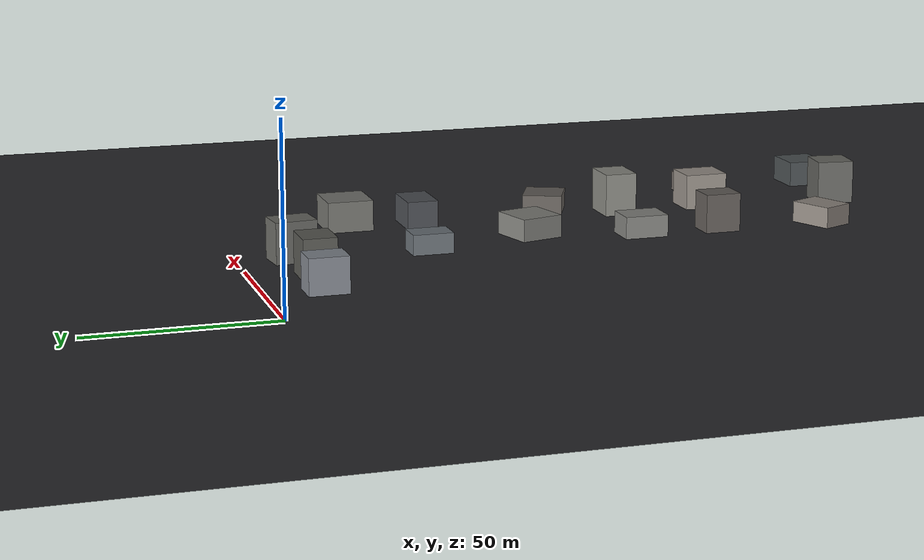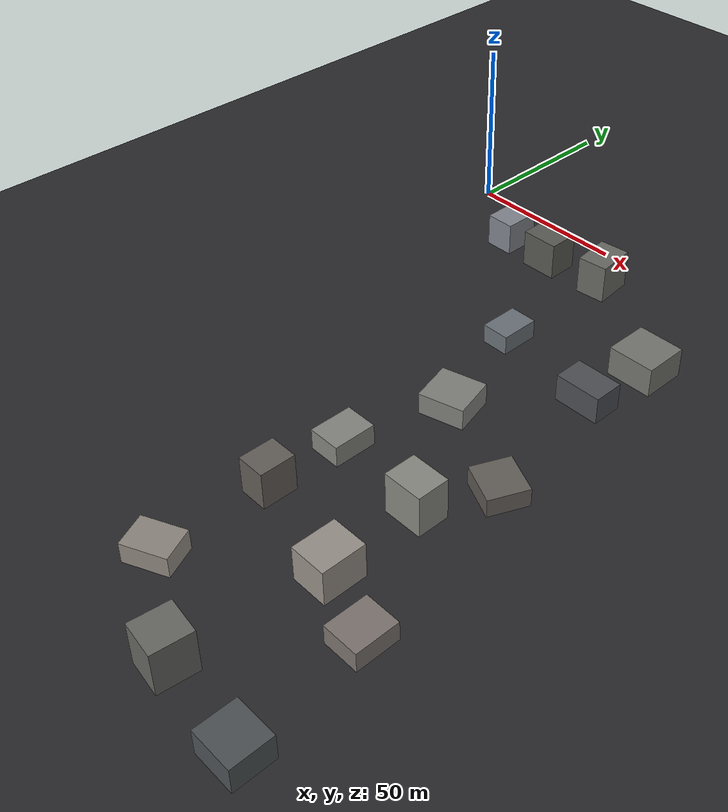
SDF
<sdf version="1.7">
 <world name="urban_course">
  <model name="ground">
   <static>true</static>
   <pose>67.5 -85.5 0 0 0 0</pose>
   <link name="l">
    <collision name="c"><geometry><plane><normal>0 0 1</normal><size>195 231</size></plane></geometry></collision>
    <visual name="v">
     <geometry><plane><normal>0 0 1</normal><size>195 231</size></plane></geometry>
     <material><ambient>0.16 0.16 0.17 1</ambient><diffuse>0.16 0.16 0.17 1</diffuse></material>
    </visual>
   </link>
  </model>
  <model name="bldg_01">
   <static>true</static>
   <pose>60.355 -115.386 3.128 0 0 -1.5708</pose>
   <link name="l">
    <collision name="c"><geometry><box><size>12.449 9.469 6.256</size></box></geometry></collision>
    <visual name="v">
     <geometry><box><size>12.449 9.469 6.256</size></box></geometry>
     <material><ambient>0.52 0.52 0.50 1</ambient><diffuse>0.52 0.52 0.50 1</diffuse></material>
    </visual>
   </link>
  </model>
  <model name="bldg_03">
   <static>true</static>
   <pose>90.294 -118.405 6.142 0 0 -1.5708</pose>
   <link name="l">
    <collision name="c"><geometry><box><size>9.323 11.536 12.285</size></box></geometry></collision>
    <visual name="v">
     <geometry><box><size>9.323 11.536 12.285</size></box></geometry>
     <material><ambient>0.54 0.54 0.51 1</ambient><diffuse>0.54 0.54 0.51 1</diffuse></material>
    </visual>
   </link>
  </model>
  <model name="bldg_04">
   <static>true</static>
   <pose>91.743 -58.435 4.015 0 0 -1.5708</pose>
   <link name="l">
    <collision name="c"><geometry><box><size>8.933 13.743 8.029</size></box></geometry></collision>
    <visual name="v">
     <geometry><box><size>8.933 13.743 8.029</size></box></geometry>
     <material><ambient>0.30 0.31 0.33 1</ambient><diffuse>0.30 0.31 0.33 1</diffuse></material>
    </visual>
   </link>
  </model>
  <model name="bldg_05">
   <static>true</static>
   <pose>99.097 -99.468 2.706 0 0 -1.9887</pose>
   <link name="l">
    <collision name="c"><geometry><box><size>11.464 12.227 5.412</size></box></geometry></collision>
    <visual name="v">
     <geometry><box><size>11.464 12.227 5.412</size></box></geometry>
     <material><ambient>0.39 0.37 0.35 1</ambient><diffuse>0.39 0.37 0.35 1</diffuse></material>
    </visual>
   </link>
  </model>
  <model name="bldg_06">
   <static>true</static>
   <pose>86.417 -186.209 6.253 0 0 -0.1177</pose>
   <link name="l">
    <collision name="c"><geometry><box><size>10.281 10.720 12.507</size></box></geometry></collision>
    <visual name="v">
     <geometry><box><size>10.281 10.720 12.507</size></box></geometry>
     <material><ambient>0.41 0.41 0.39 1</ambient><diffuse>0.41 0.41 0.39 1</diffuse></material>
    </visual>
   </link>
  </model>
  <model name="bldg_07">
   <static>true</static>
   <pose>60.331 -14.967 5.781 0 0 -1.4713</pose>
   <link name="l">
    <collision name="c"><geometry><box><size>11.655 9.027 11.562</size></box></geometry></collision>
    <visual name="v">
     <geometry><box><size>11.655 9.027 11.562</size></box></geometry>
     <material><ambient>0.41 0.41 0.39 1</ambient><diffuse>0.41 0.41 0.39 1</diffuse></material>
    </visual>
   </link>
  </model>
  <model name="bldg_09">
   <static>true</static>
   <pose>91.233 -145.859 5.126 0 0 -1.5708</pose>
   <link name="l">
    <collision name="c"><geometry><box><size>12.482 10.571 10.252</size></box></geometry></collision>
    <visual name="v">
     <geometry><box><size>12.482 10.571 10.252</size></box></geometry>
     <material><ambient>0.60 0.57 0.54 1</ambient><diffuse>0.60 0.57 0.54 1</diffuse></material>
    </visual>
   </link>
  </model>
  <model name="bldg_10">
   <static>true</static>
   <pose>68.776 -85.123 3.188 0 0 -1.3069</pose>
   <link name="l">
    <collision name="c"><geometry><box><size>12.535 13.167 6.376</size></box></geometry></collision>
    <visual name="v">
     <geometry><box><size>12.535 13.167 6.376</size></box></geometry>
     <material><ambient>0.50 0.50 0.48 1</ambient><diffuse>0.50 0.50 0.48 1</diffuse></material>
    </visual>
   </link>
  </model>
  <model name="bldg_11">
   <static>true</static>
   <pose>113.381 -188.586 3.701 0 0 0.0000</pose>
   <link name="l">
    <collision name="c"><geometry><box><size>12.090 11.222 7.401</size></box></geometry></collision>
    <visual name="v">
     <geometry><box><size>12.090 11.222 7.401</size></box></geometry>
     <material><ambient>0.30 0.32 0.33 1</ambient><diffuse>0.30 0.32 0.33 1</diffuse></material>
    </visual>
   </link>
  </model>
  <model name="bldg_12">
   <static>true</static>
   <pose>24.980 -15.986 4.974 0 0 0.0000</pose>
   <link name="l">
    <collision name="c"><geometry><box><size>8.770 10.852 9.948</size></box></geometry></collision>
    <visual name="v">
     <geometry><box><size>8.770 10.852 9.948</size></box></geometry>
     <material><ambient>0.51 0.53 0.56 1</ambient><diffuse>0.51 0.53 0.56 1</diffuse></material>
    </visual>
   </link>
  </model>
  <model name="bldg_14">
   <static>true</static>
   <pose>58.751 -52.997 2.869 0 0 -1.5708</pose>
   <link name="l">
    <collision name="c"><geometry><box><size>11.474 8.238 5.738</size></box></geometry></collision>
    <visual name="v">
     <geometry><box><size>11.474 8.238 5.738</size></box></geometry>
     <material><ambient>0.42 0.45 0.47 1</ambient><diffuse>0.42 0.45 0.47 1</diffuse></material>
    </visual>
   </link>
  </model>
  <model name="bldg_15">
   <static>true</static>
   <pose>58.799 -170.278 2.986 0 0 -1.1393</pose>
   <link name="l">
    <collision name="c"><geometry><box><size>9.601 12.724 5.973</size></box></geometry></collision>
    <visual name="v">
     <geometry><box><size>9.601 12.724 5.973</size></box></geometry>
     <material><ambient>0.56 0.53 0.50 1</ambient><diffuse>0.56 0.53 0.50 1</diffuse></material>
    </visual>
   </link>
  </model>
  <model name="bldg_16">
   <static>true</static>
   <pose>59.969 -138.481 5.489 0 0 -1.5708</pose>
   <link name="l">
    <collision name="c"><geometry><box><size>10.185 8.420 10.978</size></box></geometry></collision>
    <visual name="v">
     <geometry><box><size>10.185 8.420 10.978</size></box></geometry>
     <material><ambient>0.39 0.37 0.35 1</ambient><diffuse>0.39 0.37 0.35 1</diffuse></material>
    </visual>
   </link>
  </model>
  <model name="bldg_18">
   <static>true</static>
   <pose>94.350 -37.981 4.386 0 0 -1.5708</pose>
   <link name="l">
    <collision name="c"><geometry><box><size>13.121 13.721 8.771</size></box></geometry></collision>
    <visual name="v">
     <geometry><box><size>13.121 13.721 8.771</size></box></geometry>
     <material><ambient>0.46 0.46 0.44 1</ambient><diffuse>0.46 0.46 0.44 1</diffuse></material>
    </visual>
   </link>
  </model>
  <model name="bldg_19">
   <static>true</static>
   <pose>41.437 -17.221 5.648 0 0 0.0000</pose>
   <link name="l">
    <collision name="c"><geometry><box><size>11.384 9.308 11.295</size></box></geometry></collision>
    <visual name="v">
     <geometry><box><size>11.384 9.308 11.295</size></box></geometry>
     <material><ambient>0.35 0.35 0.33 1</ambient><diffuse>0.35 0.35 0.33 1</diffuse></material>
    </visual>
   </link>
  </model>
  <model name="bldg_20">
   <static>true</static>
   <pose>109.472 -152.504 2.842 0 0 0.0000</pose>
   <link name="l">
    <collision name="c"><geometry><box><size>10.380 12.290 5.684</size></box></geometry></collision>
    <visual name="v">
     <geometry><box><size>10.380 12.290 5.684</size></box></geometry>
     <material><ambient>0.49 0.46 0.44 1</ambient><diffuse>0.49 0.46 0.44 1</diffuse></material>
    </visual>
   </link>
  </model>
 </world>
</sdf>
